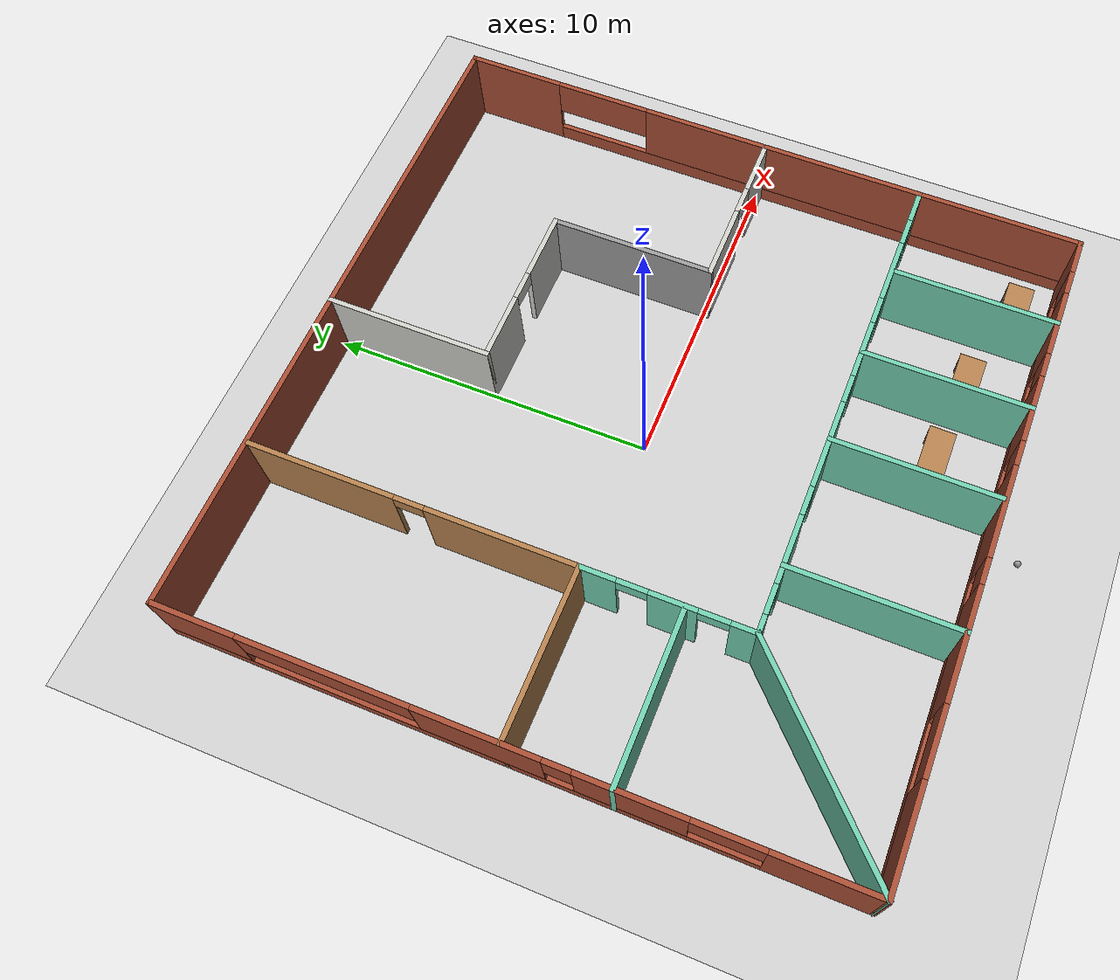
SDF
<sdf version="1.6">
 <world name="default">
  <model name="ground_plane">
   <static>1</static>
   <link name="link">
    <collision name="collision">
     <geometry><plane><normal>0 0 1</normal><size>100 100</size></plane></geometry>
     <surface>
      <contact><collide_bitmask>65535</collide_bitmask></contact>
      <friction><ode><mu>100</mu><mu2>50</mu2></ode></friction>
     </surface>
    </collision>
    <visual name="visual">
     <cast_shadows>0</cast_shadows>
     <geometry><plane><normal>0 0 1</normal><size>100 100</size></plane></geometry>
     <material>
      <script><uri>file://media/materials/scripts/gazebo.material</uri><name>Gazebo/Grey</name></script>
     </material>
    </visual>
   </link>
  </model>
  <model name="Building">
   <pose>0.05825 -0.11212 0 0 -0 0</pose>
   <link name="Wall_11">
    <collision name="Wall_11_Collision">
     <geometry><box><size>5.15 0.15 2.5</size></box></geometry>
     <pose>0 0 1.25 0 -0 0</pose>
    </collision>
    <visual name="Wall_11_Visual">
     <pose>0 0 1.25 0 -0 0</pose>
     <geometry><box><size>5.15 0.15 2.5</size></box></geometry>
     <material>
      <script><uri>file://media/materials/scripts/gazebo.material</uri><name>Gazebo/Grey</name></script>
      <ambient>0.435294 0.796078 0.67451 1</ambient>
     </material>
     <meta><layer>0</layer></meta>
    </visual>
    <pose>-7.48447 -2.98447 0 0 -0 0</pose>
   </link>
   <link name="Wall_13">
    <collision name="Wall_13_Collision">
     <geometry><box><size>7.22107 0.15 2.5</size></box></geometry>
     <pose>0 0 1.25 0 -0 0</pose>
    </collision>
    <visual name="Wall_13_Visual">
     <pose>0 0 1.25 0 -0 0</pose>
     <geometry><box><size>7.22107 0.15 2.5</size></box></geometry>
     <material>
      <script><uri>file://media/materials/scripts/gazebo.material</uri><name>Gazebo/Grey</name></script>
      <ambient>0.435294 0.796078 0.67451 1</ambient>
     </material>
     <meta><layer>0</layer></meta>
    </visual>
    <pose>-7.48447 -7.48447 0 0 0 -2.35619</pose>
   </link>
   <link name="Wall_15">
    <collision name="Wall_15_Collision">
     <geometry><box><size>5.15 0.15 2.5</size></box></geometry>
     <pose>0 0 1.25 0 -0 0</pose>
    </collision>
    <visual name="Wall_15_Visual">
     <pose>0 0 1.25 0 -0 0</pose>
     <geometry><box><size>5.15 0.15 2.5</size></box></geometry>
     <material>
      <script><uri>file://media/materials/scripts/gazebo.material</uri><name>Gazebo/Grey</name></script>
      <ambient>0.435294 0.796078 0.67451 1</ambient>
     </material>
     <meta><layer>0</layer></meta>
    </visual>
    <pose>-2.98447 -7.48447 0 0 0 -1.5708</pose>
   </link>
   <link name="Wall_17">
    <collision name="Wall_17_Collision">
     <geometry><box><size>5.15 0.15 2.5</size></box></geometry>
     <pose>0 0 1.25 0 -0 0</pose>
    </collision>
    <visual name="Wall_17_Visual">
     <pose>0 0 1.25 0 -0 0</pose>
     <geometry><box><size>5.15 0.15 2.5</size></box></geometry>
     <material>
      <script><uri>file://media/materials/scripts/gazebo.material</uri><name>Gazebo/Grey</name></script>
      <ambient>0.435294 0.796078 0.67451 1</ambient>
     </material>
     <meta><layer>0</layer></meta>
    </visual>
    <pose>7.01553 -7.48447 0 0 0 -1.5708</pose>
   </link>
   <link name="Wall_19">
    <collision name="Wall_19_Collision">
     <geometry><box><size>5.15 0.15 2.5</size></box></geometry>
     <pose>0 0 1.25 0 -0 0</pose>
    </collision>
    <visual name="Wall_19_Visual">
     <pose>0 0 1.25 0 -0 0</pose>
     <geometry><box><size>5.15 0.15 2.5</size></box></geometry>
     <material>
      <script><uri>file://media/materials/scripts/gazebo.material</uri><name>Gazebo/Grey</name></script>
      <ambient>0.435294 0.796078 0.67451 1</ambient>
     </material>
     <meta><layer>0</layer></meta>
    </visual>
    <pose>4.01553 -7.48447 0 0 0 -1.5708</pose>
   </link>
   <link name="Wall_2">
    <collision name="Wall_2_Collision">
     <geometry><box><size>20.15 0.15 2.5</size></box></geometry>
     <pose>0 0 1.25 0 -0 0</pose>
    </collision>
    <visual name="Wall_2_Visual">
     <pose>0 0 1.25 0 -0 0</pose>
     <geometry><box><size>20.15 0.15 2.5</size></box></geometry>
     <material>
      <script><uri>file://media/materials/scripts/gazebo.material</uri><name>Gazebo/Bricks</name></script>
      <ambient>1 1 1 1</ambient>
     </material>
     <meta><layer>0</layer></meta>
    </visual>
    <pose>0.015533 10.0155 0 0 -0 0</pose>
   </link>
   <link name="Wall_21">
    <collision name="Wall_21_Collision">
     <geometry><box><size>5.15 0.15 2.5</size></box></geometry>
     <pose>0 0 1.25 0 -0 0</pose>
    </collision>
    <visual name="Wall_21_Visual">
     <pose>0 0 1.25 0 -0 0</pose>
     <geometry><box><size>5.15 0.15 2.5</size></box></geometry>
     <material>
      <script><uri>file://media/materials/scripts/gazebo.material</uri><name>Gazebo/Grey</name></script>
      <ambient>0.435294 0.796078 0.67451 1</ambient>
     </material>
     <meta><layer>0</layer></meta>
    </visual>
    <pose>1.01553 -7.48447 0 0 0 -1.5708</pose>
   </link>
   <link name="Wall_23">
    <collision name="Wall_23_Collision">
     <geometry><box><size>5.15 0.15 2.5</size></box></geometry>
     <pose>0 0 1.25 0 -0 0</pose>
    </collision>
    <visual name="Wall_23_Visual">
     <pose>0 0 1.25 0 -0 0</pose>
     <geometry><box><size>5.15 0.15 2.5</size></box></geometry>
     <material>
      <script><uri>file://media/materials/scripts/gazebo.material</uri><name>Gazebo/CeilingTiled</name></script>
      <ambient>1 1 1 1</ambient>
     </material>
     <meta><layer>0</layer></meta>
    </visual>
    <pose>0.015533 7.51553 0 0 0 -1.5708</pose>
   </link>
   <link name="Wall_24">
    <pose>2.51553 5.01553 0 0 -0 0</pose>
    <visual name="Wall_24_Visual_0">
     <pose>-1.5125 0 1.25 0 -0 0</pose>
     <geometry><box><size>2.125 0.15 2.5</size></box></geometry>
     <material>
      <script><uri>file://media/materials/scripts/gazebo.material</uri><name>Gazebo/CeilingTiled</name></script>
      <ambient>1 1 1 1</ambient>
     </material>
     <meta><layer>0</layer></meta>
    </visual>
    <collision name="Wall_24_Collision_0">
     <geometry><box><size>2.125 0.15 2.5</size></box></geometry>
     <pose>-1.5125 0 1.25 0 -0 0</pose>
    </collision>
    <visual name="Wall_24_Visual_1">
     <pose>1.5125 0 1.25 0 -0 0</pose>
     <geometry><box><size>2.125 0.15 2.5</size></box></geometry>
     <material>
      <script><uri>file://media/materials/scripts/gazebo.material</uri><name>Gazebo/CeilingTiled</name></script>
      <ambient>1 1 1 1</ambient>
     </material>
     <meta><layer>0</layer></meta>
    </visual>
    <collision name="Wall_24_Collision_1">
     <geometry><box><size>2.125 0.15 2.5</size></box></geometry>
     <pose>1.5125 0 1.25 0 -0 0</pose>
    </collision>
    <visual name="Wall_24_Visual_2">
     <pose>-0 0 2.25 0 -0 0</pose>
     <geometry><box><size>0.9 0.15 0.5</size></box></geometry>
     <material>
      <script><uri>file://media/materials/scripts/gazebo.material</uri><name>Gazebo/CeilingTiled</name></script>
      <ambient>1 1 1 1</ambient>
     </material>
     <meta><layer>0</layer></meta>
    </visual>
    <collision name="Wall_24_Collision_2">
     <geometry><box><size>0.9 0.15 0.5</size></box></geometry>
     <pose>-0 0 2.25 0 -0 0</pose>
    </collision>
   </link>
   <link name="Wall_25">
    <collision name="Wall_25_Collision">
     <geometry><box><size>5.15 0.15 2.5</size></box></geometry>
     <pose>0 0 1.25 0 -0 0</pose>
    </collision>
    <visual name="Wall_25_Visual">
     <pose>0 0 1.25 0 -0 0</pose>
     <geometry><box><size>5.15 0.15 2.5</size></box></geometry>
     <material>
      <script><uri>file://media/materials/scripts/gazebo.material</uri><name>Gazebo/Grey</name></script>
      <ambient>1 1 1 1</ambient>
     </material>
     <meta><layer>0</layer></meta>
    </visual>
    <pose>5.01553 2.51553 0 0 0 -1.5708</pose>
   </link>
   <link name="Wall_26">
    <pose>7.51553 0.015533 0 0 -0 0</pose>
    <visual name="Wall_26_Visual_0">
     <pose>-1.3625 0 1.25 0 -0 0</pose>
     <geometry><box><size>2.425 0.15 2.5</size></box></geometry>
     <material>
      <script><uri>file://media/materials/scripts/gazebo.material</uri><name>Gazebo/CeilingTiled</name></script>
      <ambient>1 1 1 1</ambient>
     </material>
     <meta><layer>0</layer></meta>
    </visual>
    <collision name="Wall_26_Collision_0">
     <geometry><box><size>2.425 0.15 2.5</size></box></geometry>
     <pose>-1.3625 0 1.25 0 -0 0</pose>
    </collision>
    <visual name="Wall_26_Visual_1">
     <pose>1.6625 0 1.25 0 -0 0</pose>
     <geometry><box><size>1.825 0.15 2.5</size></box></geometry>
     <material>
      <script><uri>file://media/materials/scripts/gazebo.material</uri><name>Gazebo/CeilingTiled</name></script>
      <ambient>1 1 1 1</ambient>
     </material>
     <meta><layer>0</layer></meta>
    </visual>
    <collision name="Wall_26_Collision_1">
     <geometry><box><size>1.825 0.15 2.5</size></box></geometry>
     <pose>1.6625 0 1.25 0 -0 0</pose>
    </collision>
    <visual name="Wall_26_Visual_2">
     <pose>0.3 0 2.25 0 -0 0</pose>
     <geometry><box><size>0.9 0.15 0.5</size></box></geometry>
     <material>
      <script><uri>file://media/materials/scripts/gazebo.material</uri><name>Gazebo/CeilingTiled</name></script>
      <ambient>1 1 1 1</ambient>
     </material>
     <meta><layer>0</layer></meta>
    </visual>
    <collision name="Wall_26_Collision_2">
     <geometry><box><size>0.9 0.15 0.5</size></box></geometry>
     <pose>0.3 0 2.25 0 -0 0</pose>
    </collision>
   </link>
   <link name="Wall_28">
    <pose>-4.98447 5.01553 0 0 -0 1.5708</pose>
    <visual name="Wall_28_Visual_0">
     <pose>-2.7625 0 1.25 0 -0 0</pose>
     <geometry><box><size>4.625 0.15 2.5</size></box></geometry>
     <material>
      <script><uri>file://media/materials/scripts/gazebo.material</uri><name>Gazebo/Wood</name></script>
      <ambient>1 1 1 1</ambient>
     </material>
     <meta><layer>0</layer></meta>
    </visual>
    <collision name="Wall_28_Collision_0">
     <geometry><box><size>4.625 0.15 2.5</size></box></geometry>
     <pose>-2.7625 0 1.25 0 -0 0</pose>
    </collision>
    <visual name="Wall_28_Visual_1">
     <pose>2.7625 0 1.25 0 -0 0</pose>
     <geometry><box><size>4.625 0.15 2.5</size></box></geometry>
     <material>
      <script><uri>file://media/materials/scripts/gazebo.material</uri><name>Gazebo/Wood</name></script>
      <ambient>1 1 1 1</ambient>
     </material>
     <meta><layer>0</layer></meta>
    </visual>
    <collision name="Wall_28_Collision_1">
     <geometry><box><size>4.625 0.15 2.5</size></box></geometry>
     <pose>2.7625 0 1.25 0 -0 0</pose>
    </collision>
    <visual name="Wall_28_Visual_2">
     <pose>0 0 2.25 0 -0 0</pose>
     <geometry><box><size>0.9 0.15 0.5</size></box></geometry>
     <material>
      <script><uri>file://media/materials/scripts/gazebo.material</uri><name>Gazebo/Wood</name></script>
      <ambient>1 1 1 1</ambient>
     </material>
     <meta><layer>0</layer></meta>
    </visual>
    <collision name="Wall_28_Collision_2">
     <geometry><box><size>0.9 0.15 0.5</size></box></geometry>
     <pose>0 0 2.25 0 -0 0</pose>
    </collision>
   </link>
   <link name="Wall_3">
    <pose>10.0155 0.015533 0 0 0 -1.5708</pose>
    <visual name="Wall_3_Visual_0">
     <pose>-8.5375 0 1.25 0 -0 0</pose>
     <geometry><box><size>3.075 0.15 2.5</size></box></geometry>
     <material>
      <script><uri>file://media/materials/scripts/gazebo.material</uri><name>Gazebo/Bricks</name></script>
      <ambient>1 1 1 1</ambient>
     </material>
     <meta><layer>0</layer></meta>
    </visual>
    <collision name="Wall_3_Collision_0">
     <geometry><box><size>3.075 0.15 2.5</size></box></geometry>
     <pose>-8.5375 0 1.25 0 -0 0</pose>
    </collision>
    <visual name="Wall_3_Visual_1">
     <pose>1.5375 0 0.25 0 -0 0</pose>
     <geometry><box><size>17.075 0.15 0.5</size></box></geometry>
     <material>
      <script><uri>file://media/materials/scripts/gazebo.material</uri><name>Gazebo/Bricks</name></script>
      <ambient>1 1 1 1</ambient>
     </material>
     <meta><layer>0</layer></meta>
    </visual>
    <collision name="Wall_3_Collision_1">
     <geometry><box><size>17.075 0.15 0.5</size></box></geometry>
     <pose>1.5375 0 0.25 0 -0 0</pose>
    </collision>
    <visual name="Wall_3_Visual_2">
     <pose>3.0375 0 1.5 0 -0 0</pose>
     <geometry><box><size>14.075 0.15 2</size></box></geometry>
     <material>
      <script><uri>file://media/materials/scripts/gazebo.material</uri><name>Gazebo/Bricks</name></script>
      <ambient>1 1 1 1</ambient>
     </material>
     <meta><layer>0</layer></meta>
    </visual>
    <collision name="Wall_3_Collision_2">
     <geometry><box><size>14.075 0.15 2</size></box></geometry>
     <pose>3.0375 0 1.5 0 -0 0</pose>
    </collision>
    <visual name="Wall_3_Visual_3">
     <pose>-5.5 0 1.9 0 -0 0</pose>
     <geometry><box><size>3 0.15 1.2</size></box></geometry>
     <material>
      <script><uri>file://media/materials/scripts/gazebo.material</uri><name>Gazebo/Bricks</name></script>
      <ambient>1 1 1 1</ambient>
     </material>
     <meta><layer>0</layer></meta>
    </visual>
    <collision name="Wall_3_Collision_3">
     <geometry><box><size>3 0.15 1.2</size></box></geometry>
     <pose>-5.5 0 1.9 0 -0 0</pose>
    </collision>
   </link>
   <link name="Wall_4">
    <pose>0.015533 -9.98447 0 0 -0 3.14159</pose>
    <visual name="Wall_4_Visual_0">
     <pose>-9.4875 0 1.25 0 -0 0</pose>
     <geometry><box><size>1.175 0.15 2.5</size></box></geometry>
     <material>
      <script><uri>file://media/materials/scripts/gazebo.material</uri><name>Gazebo/Bricks</name></script>
      <ambient>1 1 1 1</ambient>
     </material>
     <meta><layer>0</layer></meta>
    </visual>
    <collision name="Wall_4_Collision_0">
     <geometry><box><size>1.175 0.15 2.5</size></box></geometry>
     <pose>-9.4875 0 1.25 0 -0 0</pose>
    </collision>
    <visual name="Wall_4_Visual_1">
     <pose>0.5875 0 0.25 0 -0 0</pose>
     <geometry><box><size>18.975 0.15 0.5</size></box></geometry>
     <material>
      <script><uri>file://media/materials/scripts/gazebo.material</uri><name>Gazebo/Bricks</name></script>
      <ambient>1 1 1 1</ambient>
     </material>
     <meta><layer>0</layer></meta>
    </visual>
    <collision name="Wall_4_Collision_1">
     <geometry><box><size>18.975 0.15 0.5</size></box></geometry>
     <pose>0.5875 0 0.25 0 -0 0</pose>
    </collision>
    <visual name="Wall_4_Visual_2">
     <pose>-7 0 1.5 0 -0 0</pose>
     <geometry><box><size>2.2 0.15 2</size></box></geometry>
     <material>
      <script><uri>file://media/materials/scripts/gazebo.material</uri><name>Gazebo/Bricks</name></script>
      <ambient>1 1 1 1</ambient>
     </material>
     <meta><layer>0</layer></meta>
    </visual>
    <collision name="Wall_4_Collision_2">
     <geometry><box><size>2.2 0.15 2</size></box></geometry>
     <pose>-7 0 1.5 0 -0 0</pose>
    </collision>
    <visual name="Wall_4_Visual_3">
     <pose>-4 0 1.5 0 -0 0</pose>
     <geometry><box><size>2.2 0.15 2</size></box></geometry>
     <material>
      <script><uri>file://media/materials/scripts/gazebo.material</uri><name>Gazebo/Bricks</name></script>
      <ambient>1 1 1 1</ambient>
     </material>
     <meta><layer>0</layer></meta>
    </visual>
    <collision name="Wall_4_Collision_3">
     <geometry><box><size>2.2 0.15 2</size></box></geometry>
     <pose>-4 0 1.5 0 -0 0</pose>
    </collision>
    <visual name="Wall_4_Visual_4">
     <pose>-0.65 0 1.5 0 -0 0</pose>
     <geometry><box><size>2.9 0.15 2</size></box></geometry>
     <material>
      <script><uri>file://media/materials/scripts/gazebo.material</uri><name>Gazebo/Bricks</name></script>
      <ambient>1 1 1 1</ambient>
     </material>
     <meta><layer>0</layer></meta>
    </visual>
    <collision name="Wall_4_Collision_4">
     <geometry><box><size>2.9 0.15 2</size></box></geometry>
     <pose>-0.65 0 1.5 0 -0 0</pose>
    </collision>
    <visual name="Wall_4_Visual_5">
     <pose>3.3 0 1.5 0 -0 0</pose>
     <geometry><box><size>3.4 0.15 2</size></box></geometry>
     <material>
      <script><uri>file://media/materials/scripts/gazebo.material</uri><name>Gazebo/Bricks</name></script>
      <ambient>1 1 1 1</ambient>
     </material>
     <meta><layer>0</layer></meta>
    </visual>
    <collision name="Wall_4_Collision_5">
     <geometry><box><size>3.4 0.15 2</size></box></geometry>
     <pose>3.3 0 1.5 0 -0 0</pose>
    </collision>
    <visual name="Wall_4_Visual_6">
     <pose>8.5375 0 1.5 0 -0 0</pose>
     <geometry><box><size>3.075 0.15 2</size></box></geometry>
     <material>
      <script><uri>file://media/materials/scripts/gazebo.material</uri><name>Gazebo/Bricks</name></script>
      <ambient>1 1 1 1</ambient>
     </material>
     <meta><layer>0</layer></meta>
    </visual>
    <collision name="Wall_4_Collision_6">
     <geometry><box><size>3.075 0.15 2</size></box></geometry>
     <pose>8.5375 0 1.5 0 -0 0</pose>
    </collision>
    <visual name="Wall_4_Visual_7">
     <pose>-8.5 0 1.9 0 -0 0</pose>
     <geometry><box><size>0.8 0.15 1.2</size></box></geometry>
     <material>
      <script><uri>file://media/materials/scripts/gazebo.material</uri><name>Gazebo/Bricks</name></script>
      <ambient>1 1 1 1</ambient>
     </material>
     <meta><layer>0</layer></meta>
    </visual>
    <collision name="Wall_4_Collision_7">
     <geometry><box><size>0.8 0.15 1.2</size></box></geometry>
     <pose>-8.5 0 1.9 0 -0 0</pose>
    </collision>
    <visual name="Wall_4_Visual_8">
     <pose>-5.5 0 1.9 0 -0 0</pose>
     <geometry><box><size>0.8 0.15 1.2</size></box></geometry>
     <material>
      <script><uri>file://media/materials/scripts/gazebo.material</uri><name>Gazebo/Bricks</name></script>
      <ambient>1 1 1 1</ambient>
     </material>
     <meta><layer>0</layer></meta>
    </visual>
    <collision name="Wall_4_Collision_8">
     <geometry><box><size>0.8 0.15 1.2</size></box></geometry>
     <pose>-5.5 0 1.9 0 -0 0</pose>
    </collision>
    <visual name="Wall_4_Visual_9">
     <pose>-2.5 0 1.9 0 -0 0</pose>
     <geometry><box><size>0.8 0.15 1.2</size></box></geometry>
     <material>
      <script><uri>file://media/materials/scripts/gazebo.material</uri><name>Gazebo/Bricks</name></script>
      <ambient>1 1 1 1</ambient>
     </material>
     <meta><layer>0</layer></meta>
    </visual>
    <collision name="Wall_4_Collision_9">
     <geometry><box><size>0.8 0.15 1.2</size></box></geometry>
     <pose>-2.5 0 1.9 0 -0 0</pose>
    </collision>
    <visual name="Wall_4_Visual_10">
     <pose>1.2 0 1.9 0 -0 0</pose>
     <geometry><box><size>0.8 0.15 1.2</size></box></geometry>
     <material>
      <script><uri>file://media/materials/scripts/gazebo.material</uri><name>Gazebo/Bricks</name></script>
      <ambient>1 1 1 1</ambient>
     </material>
     <meta><layer>0</layer></meta>
    </visual>
    <collision name="Wall_4_Collision_10">
     <geometry><box><size>0.8 0.15 1.2</size></box></geometry>
     <pose>1.2 0 1.9 0 -0 0</pose>
    </collision>
    <visual name="Wall_4_Visual_11">
     <pose>6 0 1.9 0 -0 0</pose>
     <geometry><box><size>2 0.15 1.2</size></box></geometry>
     <material>
      <script><uri>file://media/materials/scripts/gazebo.material</uri><name>Gazebo/Bricks</name></script>
      <ambient>1 1 1 1</ambient>
     </material>
     <meta><layer>0</layer></meta>
    </visual>
    <collision name="Wall_4_Collision_11">
     <geometry><box><size>2 0.15 1.2</size></box></geometry>
     <pose>6 0 1.9 0 -0 0</pose>
    </collision>
   </link>
   <link name="Wall_5">
    <pose>-9.98447 0.015533 0 0 -0 1.5708</pose>
    <visual name="Wall_5_Visual_0">
     <pose>-8.5375 0 1.25 0 -0 0</pose>
     <geometry><box><size>3.075 0.15 2.5</size></box></geometry>
     <material>
      <script><uri>file://media/materials/scripts/gazebo.material</uri><name>Gazebo/Bricks</name></script>
      <ambient>1 1 1 1</ambient>
     </material>
     <meta><layer>0</layer></meta>
    </visual>
    <collision name="Wall_5_Collision_0">
     <geometry><box><size>3.075 0.15 2.5</size></box></geometry>
     <pose>-8.5375 0 1.25 0 -0 0</pose>
    </collision>
    <visual name="Wall_5_Visual_1">
     <pose>1.5375 0 0.25 0 -0 0</pose>
     <geometry><box><size>17.075 0.15 0.5</size></box></geometry>
     <material>
      <script><uri>file://media/materials/scripts/gazebo.material</uri><name>Gazebo/Bricks</name></script>
      <ambient>1 1 1 1</ambient>
     </material>
     <meta><layer>0</layer></meta>
    </visual>
    <collision name="Wall_5_Collision_1">
     <geometry><box><size>17.075 0.15 0.5</size></box></geometry>
     <pose>1.5375 0 0.25 0 -0 0</pose>
    </collision>
    <visual name="Wall_5_Visual_2">
     <pose>-3.45 0 1.5 0 -0 0</pose>
     <geometry><box><size>3.1 0.15 2</size></box></geometry>
     <material>
      <script><uri>file://media/materials/scripts/gazebo.material</uri><name>Gazebo/Bricks</name></script>
      <ambient>1 1 1 1</ambient>
     </material>
     <meta><layer>0</layer></meta>
    </visual>
    <collision name="Wall_5_Collision_2">
     <geometry><box><size>3.1 0.15 2</size></box></geometry>
     <pose>-3.45 0 1.5 0 -0 0</pose>
    </collision>
    <visual name="Wall_5_Visual_3">
     <pose>0.7 0 1.5 0 -0 0</pose>
     <geometry><box><size>3.6 0.15 2</size></box></geometry>
     <material>
      <script><uri>file://media/materials/scripts/gazebo.material</uri><name>Gazebo/Bricks</name></script>
      <ambient>1 1 1 1</ambient>
     </material>
     <meta><layer>0</layer></meta>
    </visual>
    <collision name="Wall_5_Collision_3">
     <geometry><box><size>3.6 0.15 2</size></box></geometry>
     <pose>0.7 0 1.5 0 -0 0</pose>
    </collision>
    <visual name="Wall_5_Visual_4">
     <pose>8.7875 0 1.5 0 -0 0</pose>
     <geometry><box><size>2.575 0.15 2</size></box></geometry>
     <material>
      <script><uri>file://media/materials/scripts/gazebo.material</uri><name>Gazebo/Bricks</name></script>
      <ambient>1 1 1 1</ambient>
     </material>
     <meta><layer>0</layer></meta>
    </visual>
    <collision name="Wall_5_Collision_4">
     <geometry><box><size>2.575 0.15 2</size></box></geometry>
     <pose>8.7875 0 1.5 0 -0 0</pose>
    </collision>
    <visual name="Wall_5_Visual_5">
     <pose>-6 0 1.9 0 -0 0</pose>
     <geometry><box><size>2 0.15 1.2</size></box></geometry>
     <material>
      <script><uri>file://media/materials/scripts/gazebo.material</uri><name>Gazebo/Bricks</name></script>
      <ambient>1 1 1 1</ambient>
     </material>
     <meta><layer>0</layer></meta>
    </visual>
    <collision name="Wall_5_Collision_5">
     <geometry><box><size>2 0.15 1.2</size></box></geometry>
     <pose>-6 0 1.9 0 -0 0</pose>
    </collision>
    <visual name="Wall_5_Visual_6">
     <pose>-1.5 0 1.9 0 -0 0</pose>
     <geometry><box><size>0.8 0.15 1.2</size></box></geometry>
     <material>
      <script><uri>file://media/materials/scripts/gazebo.material</uri><name>Gazebo/Bricks</name></script>
      <ambient>1 1 1 1</ambient>
     </material>
     <meta><layer>0</layer></meta>
    </visual>
    <collision name="Wall_5_Collision_6">
     <geometry><box><size>0.8 0.15 1.2</size></box></geometry>
     <pose>-1.5 0 1.9 0 -0 0</pose>
    </collision>
    <visual name="Wall_5_Visual_7">
     <pose>5 0 1.9 0 -0 0</pose>
     <geometry><box><size>5 0.15 1.2</size></box></geometry>
     <material>
      <script><uri>file://media/materials/scripts/gazebo.material</uri><name>Gazebo/Bricks</name></script>
      <ambient>1 1 1 1</ambient>
     </material>
     <meta><layer>0</layer></meta>
    </visual>
    <collision name="Wall_5_Collision_7">
     <geometry><box><size>5 0.15 1.2</size></box></geometry>
     <pose>5 0 1.9 0 -0 0</pose>
    </collision>
   </link>
   <link name="Wall_7">
    <collision name="Wall_7_Collision">
     <geometry><box><size>5.15 0.15 2.5</size></box></geometry>
     <pose>0 0 1.25 0 -0 0</pose>
    </collision>
    <visual name="Wall_7_Visual">
     <pose>0 0 1.25 0 -0 0</pose>
     <geometry><box><size>5.15 0.15 2.5</size></box></geometry>
     <material>
      <script><uri>file://media/materials/scripts/gazebo.material</uri><name>Gazebo/Wood</name></script>
      <ambient>1 1 1 1</ambient>
     </material>
     <meta><layer>0</layer></meta>
    </visual>
    <pose>-7.48447 0.015533 0 0 -0 0</pose>
   </link>
   <link name="Wall_8">
    <pose>-4.98447 -2.48447 0 0 0 -1.5708</pose>
    <visual name="Wall_8_Visual_0">
     <pose>-2.0125 0 1.25 0 -0 0</pose>
     <geometry><box><size>1.125 0.15 2.5</size></box></geometry>
     <material>
      <script><uri>file://media/materials/scripts/gazebo.material</uri><name>Gazebo/Grey</name></script>
      <ambient>0.435294 0.796078 0.67451 1</ambient>
     </material>
     <meta><layer>0</layer></meta>
    </visual>
    <collision name="Wall_8_Collision_0">
     <geometry><box><size>1.125 0.15 2.5</size></box></geometry>
     <pose>-2.0125 0 1.25 0 -0 0</pose>
    </collision>
    <visual name="Wall_8_Visual_1">
     <pose>0.15 0 1.25 0 -0 0</pose>
     <geometry><box><size>1.4 0.15 2.5</size></box></geometry>
     <material>
      <script><uri>file://media/materials/scripts/gazebo.material</uri><name>Gazebo/Grey</name></script>
      <ambient>0.435294 0.796078 0.67451 1</ambient>
     </material>
     <meta><layer>0</layer></meta>
    </visual>
    <collision name="Wall_8_Collision_1">
     <geometry><box><size>1.4 0.15 2.5</size></box></geometry>
     <pose>0.15 0 1.25 0 -0 0</pose>
    </collision>
    <visual name="Wall_8_Visual_2">
     <pose>2.1625 0 1.25 0 -0 0</pose>
     <geometry><box><size>0.825 0.15 2.5</size></box></geometry>
     <material>
      <script><uri>file://media/materials/scripts/gazebo.material</uri><name>Gazebo/Grey</name></script>
      <ambient>0.435294 0.796078 0.67451 1</ambient>
     </material>
     <meta><layer>0</layer></meta>
    </visual>
    <collision name="Wall_8_Collision_2">
     <geometry><box><size>0.825 0.15 2.5</size></box></geometry>
     <pose>2.1625 0 1.25 0 -0 0</pose>
    </collision>
    <visual name="Wall_8_Visual_3">
     <pose>-1 0 2.25 0 -0 0</pose>
     <geometry><box><size>0.9 0.15 0.5</size></box></geometry>
     <material>
      <script><uri>file://media/materials/scripts/gazebo.material</uri><name>Gazebo/Grey</name></script>
      <ambient>0.435294 0.796078 0.67451 1</ambient>
     </material>
     <meta><layer>0</layer></meta>
    </visual>
    <collision name="Wall_8_Collision_3">
     <geometry><box><size>0.9 0.15 0.5</size></box></geometry>
     <pose>-1 0 2.25 0 -0 0</pose>
    </collision>
    <visual name="Wall_8_Visual_4">
     <pose>1.3 0 2.25 0 -0 0</pose>
     <geometry><box><size>0.9 0.15 0.5</size></box></geometry>
     <material>
      <script><uri>file://media/materials/scripts/gazebo.material</uri><name>Gazebo/Grey</name></script>
      <ambient>0.435294 0.796078 0.67451 1</ambient>
     </material>
     <meta><layer>0</layer></meta>
    </visual>
    <collision name="Wall_8_Collision_4">
     <geometry><box><size>0.9 0.15 0.5</size></box></geometry>
     <pose>1.3 0 2.25 0 -0 0</pose>
    </collision>
   </link>
   <link name="Wall_9">
    <pose>2.51553 -4.98447 0 0 -0 0</pose>
    <visual name="Wall_9_Visual_0">
     <pose>-7.2634 0 1.25 0 -0 0</pose>
     <geometry><box><size>0.62319 0.15 2.5</size></box></geometry>
     <material>
      <script><uri>file://media/materials/scripts/gazebo.material</uri><name>Gazebo/Grey</name></script>
      <ambient>0.435294 0.796078 0.67451 1</ambient>
     </material>
     <meta><layer>0</layer></meta>
    </visual>
    <collision name="Wall_9_Collision_0">
     <geometry><box><size>0.62319 0.15 2.5</size></box></geometry>
     <pose>-7.2634 0 1.25 0 -0 0</pose>
    </collision>
    <visual name="Wall_9_Visual_1">
     <pose>-5.00091 0 1.25 0 -0 0</pose>
     <geometry><box><size>2.10181 0.15 2.5</size></box></geometry>
     <material>
      <script><uri>file://media/materials/scripts/gazebo.material</uri><name>Gazebo/Grey</name></script>
      <ambient>0.435294 0.796078 0.67451 1</ambient>
     </material>
     <meta><layer>0</layer></meta>
    </visual>
    <collision name="Wall_9_Collision_1">
     <geometry><box><size>2.10181 0.15 2.5</size></box></geometry>
     <pose>-5.00091 0 1.25 0 -0 0</pose>
    </collision>
    <visual name="Wall_9_Visual_2">
     <pose>-1.65118 0 1.25 0 -0 0</pose>
     <geometry><box><size>2.79763 0.15 2.5</size></box></geometry>
     <material>
      <script><uri>file://media/materials/scripts/gazebo.material</uri><name>Gazebo/Grey</name></script>
      <ambient>0.435294 0.796078 0.67451 1</ambient>
     </material>
     <meta><layer>0</layer></meta>
    </visual>
    <collision name="Wall_9_Collision_2">
     <geometry><box><size>2.79763 0.15 2.5</size></box></geometry>
     <pose>-1.65118 0 1.25 0 -0 0</pose>
    </collision>
    <visual name="Wall_9_Visual_3">
     <pose>1.59882 0 1.25 0 -0 0</pose>
     <geometry><box><size>1.90237 0.15 2.5</size></box></geometry>
     <material>
      <script><uri>file://media/materials/scripts/gazebo.material</uri><name>Gazebo/Grey</name></script>
      <ambient>0.435294 0.796078 0.67451 1</ambient>
     </material>
     <meta><layer>0</layer></meta>
    </visual>
    <collision name="Wall_9_Collision_3">
     <geometry><box><size>1.90237 0.15 2.5</size></box></geometry>
     <pose>1.59882 0 1.25 0 -0 0</pose>
    </collision>
    <visual name="Wall_9_Visual_4">
     <pose>4.5 0 1.25 0 -0 0</pose>
     <geometry><box><size>2.1 0.15 2.5</size></box></geometry>
     <material>
      <script><uri>file://media/materials/scripts/gazebo.material</uri><name>Gazebo/Grey</name></script>
      <ambient>0.435294 0.796078 0.67451 1</ambient>
     </material>
     <meta><layer>0</layer></meta>
    </visual>
    <collision name="Wall_9_Collision_4">
     <geometry><box><size>2.1 0.15 2.5</size></box></geometry>
     <pose>4.5 0 1.25 0 -0 0</pose>
    </collision>
    <visual name="Wall_9_Visual_5">
     <pose>7.0125 0 1.25 0 -0 0</pose>
     <geometry><box><size>1.125 0.15 2.5</size></box></geometry>
     <material>
      <script><uri>file://media/materials/scripts/gazebo.material</uri><name>Gazebo/Grey</name></script>
      <ambient>0.435294 0.796078 0.67451 1</ambient>
     </material>
     <meta><layer>0</layer></meta>
    </visual>
    <collision name="Wall_9_Collision_5">
     <geometry><box><size>1.125 0.15 2.5</size></box></geometry>
     <pose>7.0125 0 1.25 0 -0 0</pose>
    </collision>
    <visual name="Wall_9_Visual_6">
     <pose>-6.50181 0 2.25 0 -0 0</pose>
     <geometry><box><size>0.9 0.15 0.5</size></box></geometry>
     <material>
      <script><uri>file://media/materials/scripts/gazebo.material</uri><name>Gazebo/Grey</name></script>
      <ambient>0.435294 0.796078 0.67451 1</ambient>
     </material>
     <meta><layer>0</layer></meta>
    </visual>
    <collision name="Wall_9_Collision_6">
     <geometry><box><size>0.9 0.15 0.5</size></box></geometry>
     <pose>-6.50181 0 2.25 0 -0 0</pose>
    </collision>
    <visual name="Wall_9_Visual_7">
     <pose>-3.5 0 2.25 0 -0 0</pose>
     <geometry><box><size>0.9 0.15 0.5</size></box></geometry>
     <material>
      <script><uri>file://media/materials/scripts/gazebo.material</uri><name>Gazebo/Grey</name></script>
      <ambient>0.435294 0.796078 0.67451 1</ambient>
     </material>
     <meta><layer>0</layer></meta>
    </visual>
    <collision name="Wall_9_Collision_7">
     <geometry><box><size>0.9 0.15 0.5</size></box></geometry>
     <pose>-3.5 0 2.25 0 -0 0</pose>
    </collision>
    <visual name="Wall_9_Visual_8">
     <pose>0.197634 0 2.25 0 -0 0</pose>
     <geometry><box><size>0.9 0.15 0.5</size></box></geometry>
     <material>
      <script><uri>file://media/materials/scripts/gazebo.material</uri><name>Gazebo/Grey</name></script>
      <ambient>0.435294 0.796078 0.67451 1</ambient>
     </material>
     <meta><layer>0</layer></meta>
    </visual>
    <collision name="Wall_9_Collision_8">
     <geometry><box><size>0.9 0.15 0.5</size></box></geometry>
     <pose>0.197634 0 2.25 0 -0 0</pose>
    </collision>
    <visual name="Wall_9_Visual_9">
     <pose>3 0 2.25 0 -0 0</pose>
     <geometry><box><size>0.9 0.15 0.5</size></box></geometry>
     <material>
      <script><uri>file://media/materials/scripts/gazebo.material</uri><name>Gazebo/Grey</name></script>
      <ambient>0.435294 0.796078 0.67451 1</ambient>
     </material>
     <meta><layer>0</layer></meta>
    </visual>
    <collision name="Wall_9_Collision_9">
     <geometry><box><size>0.9 0.15 0.5</size></box></geometry>
     <pose>3 0 2.25 0 -0 0</pose>
    </collision>
    <visual name="Wall_9_Visual_10">
     <pose>6 0 2.25 0 -0 0</pose>
     <geometry><box><size>0.9 0.15 0.5</size></box></geometry>
     <material>
      <script><uri>file://media/materials/scripts/gazebo.material</uri><name>Gazebo/Grey</name></script>
      <ambient>0.435294 0.796078 0.67451 1</ambient>
     </material>
     <meta><layer>0</layer></meta>
    </visual>
    <collision name="Wall_9_Collision_10">
     <geometry><box><size>0.9 0.15 0.5</size></box></geometry>
     <pose>6 0 2.25 0 -0 0</pose>
    </collision>
   </link>
   <static>1</static>
  </model>
  <model name="table_3">
   <static>1</static>
   <link name="link">
    <collision name="surface">
     <pose>0 0 1 0 -0 0</pose>
     <geometry><box><size>1.5 0.8 0.03</size></box></geometry>
     <surface><friction><ode><mu>0.6</mu><mu2>0.6</mu2></ode></friction></surface>
    </collision>
    <visual name="visual1">
     <pose>0 0 1 0 -0 0</pose>
     <geometry><box><size>1.5 0.8 0.03</size></box></geometry>
     <material>
      <script><uri>file://media/materials/scripts/gazebo.material</uri><name>Gazebo/Wood</name></script>
     </material>
    </visual>
    <collision name="front_left_leg">
     <pose>0.68 0.38 0.5 0 -0 0</pose>
     <geometry><cylinder><radius>0.02</radius><length>1</length></cylinder></geometry>
    </collision>
    <visual name="front_left_leg">
     <pose>0.68 0.38 0.5 0 -0 0</pose>
     <geometry><cylinder><radius>0.02</radius><length>1</length></cylinder></geometry>
     <material>
      <script><uri>file://media/materials/scripts/gazebo.material</uri><name>Gazebo/Grey</name></script>
     </material>
    </visual>
    <collision name="front_right_leg">
     <pose>0.68 -0.38 0.5 0 -0 0</pose>
     <geometry><cylinder><radius>0.02</radius><length>1</length></cylinder></geometry>
    </collision>
    <visual name="front_right_leg">
     <pose>0.68 -0.38 0.5 0 -0 0</pose>
     <geometry><cylinder><radius>0.02</radius><length>1</length></cylinder></geometry>
     <material>
      <script><uri>file://media/materials/scripts/gazebo.material</uri><name>Gazebo/Grey</name></script>
     </material>
    </visual>
    <collision name="back_right_leg">
     <pose>-0.68 -0.38 0.5 0 -0 0</pose>
     <geometry><cylinder><radius>0.02</radius><length>1</length></cylinder></geometry>
    </collision>
    <visual name="back_right_leg">
     <pose>-0.68 -0.38 0.5 0 -0 0</pose>
     <geometry><cylinder><radius>0.02</radius><length>1</length></cylinder></geometry>
     <material>
      <script><uri>file://media/materials/scripts/gazebo.material</uri><name>Gazebo/Grey</name></script>
     </material>
    </visual>
    <collision name="back_left_leg">
     <pose>-0.68 0.38 0.5 0 -0 0</pose>
     <geometry><cylinder><radius>0.02</radius><length>1</length></cylinder></geometry>
    </collision>
    <visual name="back_left_leg">
     <pose>-0.68 0.38 0.5 0 -0 0</pose>
     <geometry><cylinder><radius>0.02</radius><length>1</length></cylinder></geometry>
     <material>
      <script><uri>file://media/materials/scripts/gazebo.material</uri><name>Gazebo/Grey</name></script>
     </material>
    </visual>
   </link>
   <pose>8.2714 -8.95078 0 0 -0 0</pose>
  </model>
  <model name="table_4">
   <static>1</static>
   <link name="link">
    <collision name="surface">
     <pose>0 0 1 0 -0 0</pose>
     <geometry><box><size>1.5 0.8 0.03</size></box></geometry>
     <surface><friction><ode><mu>0.6</mu><mu2>0.6</mu2></ode></friction></surface>
    </collision>
    <visual name="visual1">
     <pose>0 0 1 0 -0 0</pose>
     <geometry><box><size>1.5 0.8 0.03</size></box></geometry>
     <material>
      <script><uri>file://media/materials/scripts/gazebo.material</uri><name>Gazebo/Wood</name></script>
     </material>
    </visual>
    <collision name="front_left_leg">
     <pose>0.68 0.38 0.5 0 -0 0</pose>
     <geometry><cylinder><radius>0.02</radius><length>1</length></cylinder></geometry>
    </collision>
    <visual name="front_left_leg">
     <pose>0.68 0.38 0.5 0 -0 0</pose>
     <geometry><cylinder><radius>0.02</radius><length>1</length></cylinder></geometry>
     <material>
      <script><uri>file://media/materials/scripts/gazebo.material</uri><name>Gazebo/Grey</name></script>
     </material>
    </visual>
    <collision name="front_right_leg">
     <pose>0.68 -0.38 0.5 0 -0 0</pose>
     <geometry><cylinder><radius>0.02</radius><length>1</length></cylinder></geometry>
    </collision>
    <visual name="front_right_leg">
     <pose>0.68 -0.38 0.5 0 -0 0</pose>
     <geometry><cylinder><radius>0.02</radius><length>1</length></cylinder></geometry>
     <material>
      <script><uri>file://media/materials/scripts/gazebo.material</uri><name>Gazebo/Grey</name></script>
     </material>
    </visual>
    <collision name="back_right_leg">
     <pose>-0.68 -0.38 0.5 0 -0 0</pose>
     <geometry><cylinder><radius>0.02</radius><length>1</length></cylinder></geometry>
    </collision>
    <visual name="back_right_leg">
     <pose>-0.68 -0.38 0.5 0 -0 0</pose>
     <geometry><cylinder><radius>0.02</radius><length>1</length></cylinder></geometry>
     <material>
      <script><uri>file://media/materials/scripts/gazebo.material</uri><name>Gazebo/Grey</name></script>
     </material>
    </visual>
    <collision name="back_left_leg">
     <pose>-0.68 0.38 0.5 0 -0 0</pose>
     <geometry><cylinder><radius>0.02</radius><length>1</length></cylinder></geometry>
    </collision>
    <visual name="back_left_leg">
     <pose>-0.68 0.38 0.5 0 -0 0</pose>
     <geometry><cylinder><radius>0.02</radius><length>1</length></cylinder></geometry>
     <material>
      <script><uri>file://media/materials/scripts/gazebo.material</uri><name>Gazebo/Grey</name></script>
     </material>
    </visual>
   </link>
   <pose>5.25322 -8.22483 0 0 -0 0</pose>
  </model>
  <model name="table_5">
   <static>1</static>
   <link name="link">
    <collision name="surface">
     <pose>0 0 1 0 -0 0</pose>
     <geometry><box><size>1.5 0.8 0.03</size></box></geometry>
     <surface><friction><ode><mu>0.6</mu><mu2>0.6</mu2></ode></friction></surface>
    </collision>
    <visual name="visual1">
     <pose>0 0 1 0 -0 0</pose>
     <geometry><box><size>1.5 0.8 0.03</size></box></geometry>
     <material>
      <script><uri>file://media/materials/scripts/gazebo.material</uri><name>Gazebo/Wood</name></script>
     </material>
    </visual>
    <collision name="front_left_leg">
     <pose>0.68 0.38 0.5 0 -0 0</pose>
     <geometry><cylinder><radius>0.02</radius><length>1</length></cylinder></geometry>
    </collision>
    <visual name="front_left_leg">
     <pose>0.68 0.38 0.5 0 -0 0</pose>
     <geometry><cylinder><radius>0.02</radius><length>1</length></cylinder></geometry>
     <material>
      <script><uri>file://media/materials/scripts/gazebo.material</uri><name>Gazebo/Grey</name></script>
     </material>
    </visual>
    <collision name="front_right_leg">
     <pose>0.68 -0.38 0.5 0 -0 0</pose>
     <geometry><cylinder><radius>0.02</radius><length>1</length></cylinder></geometry>
    </collision>
    <visual name="front_right_leg">
     <pose>0.68 -0.38 0.5 0 -0 0</pose>
     <geometry><cylinder><radius>0.02</radius><length>1</length></cylinder></geometry>
     <material>
      <script><uri>file://media/materials/scripts/gazebo.material</uri><name>Gazebo/Grey</name></script>
     </material>
    </visual>
    <collision name="back_right_leg">
     <pose>-0.68 -0.38 0.5 0 -0 0</pose>
     <geometry><cylinder><radius>0.02</radius><length>1</length></cylinder></geometry>
    </collision>
    <visual name="back_right_leg">
     <pose>-0.68 -0.38 0.5 0 -0 0</pose>
     <geometry><cylinder><radius>0.02</radius><length>1</length></cylinder></geometry>
     <material>
      <script><uri>file://media/materials/scripts/gazebo.material</uri><name>Gazebo/Grey</name></script>
     </material>
    </visual>
    <collision name="back_left_leg">
     <pose>-0.68 0.38 0.5 0 -0 0</pose>
     <geometry><cylinder><radius>0.02</radius><length>1</length></cylinder></geometry>
    </collision>
    <visual name="back_left_leg">
     <pose>-0.68 0.38 0.5 0 -0 0</pose>
     <geometry><cylinder><radius>0.02</radius><length>1</length></cylinder></geometry>
     <material>
      <script><uri>file://media/materials/scripts/gazebo.material</uri><name>Gazebo/Grey</name></script>
     </material>
    </visual>
   </link>
   <pose>2.57532 -8.03387 0 0 -0 0</pose>
  </model>
  <model name="my_ball">
   <link name="link_0">
    <inertial>
     <mass>1</mass>
     <inertia><ixx>0.1</ixx><ixy>0</ixy><ixz>0</ixz><iyy>0.1</iyy><iyz>0</iyz><izz>0.1</izz></inertia>
    </inertial>
    <visual name="visual">
     <geometry><sphere><radius>0.1</radius></sphere></geometry>
     <material>
      <lighting>1</lighting>
      <script><uri>file://media/materials/scripts/gazebo.material</uri><name>Gazebo/Grey</name></script>
      <shader type="pixel"><normal_map>__default__</normal_map></shader>
      <ambient>1 1 1 1</ambient>
      <diffuse>1 1 1 1</diffuse>
      <specular>1 1 1 1</specular>
      <emissive>1 1 1 1</emissive>
     </material>
    </visual>
    <collision name="collision">
     <geometry><sphere><radius>0.1</radius></sphere></geometry>
     <surface>
      <friction>
       <ode><mu>1</mu><mu2>1</mu2><fdir1>0 0 0</fdir1><slip1>0</slip1><slip2>0</slip2></ode>
       <torsional>
        <coefficient>1</coefficient>
        <patch_radius>0</patch_radius>
        <surface_radius>0</surface_radius>
        <use_patch_radius>1</use_patch_radius>
        <ode><slip>0</slip></ode>
       </torsional>
      </friction>
      <bounce><restitution_coefficient>0</restitution_coefficient><threshold>1e+06</threshold></bounce>
      <contact>
       <collide_without_contact>0</collide_without_contact>
       <collide_without_contact_bitmask>1</collide_without_contact_bitmask>
       <collide_bitmask>1</collide_bitmask>
       <ode>
        <soft_cfm>0</soft_cfm>
        <soft_erp>0.2</soft_erp>
        <kp>1e+13</kp>
        <kd>1</kd>
        <max_vel>0.01</max_vel>
        <min_depth>0</min_depth>
       </ode>
       <bullet>
        <split_impulse>1</split_impulse>
        <split_impulse_penetration_threshold>-0.01</split_impulse_penetration_threshold>
        <soft_cfm>0</soft_cfm>
        <soft_erp>0.2</soft_erp>
        <kp>1e+13</kp>
        <kd>1</kd>
       </bullet>
      </contact>
     </surface>
    </collision>
   </link>
   <static>0</static>
   <pose>0.475856 -11.1836 0.1 0 -0 0</pose>
  </model>
 </world>
</sdf>
